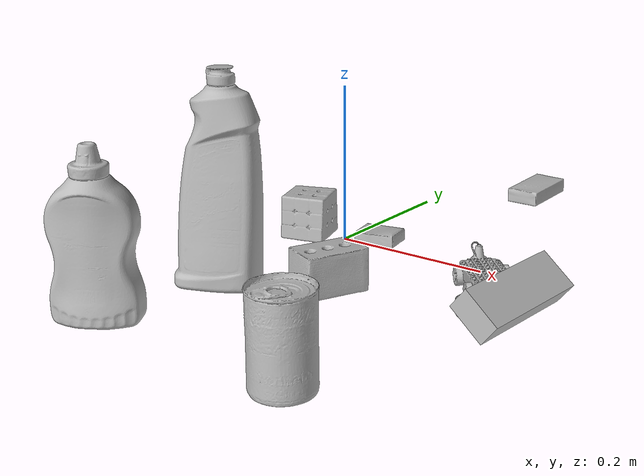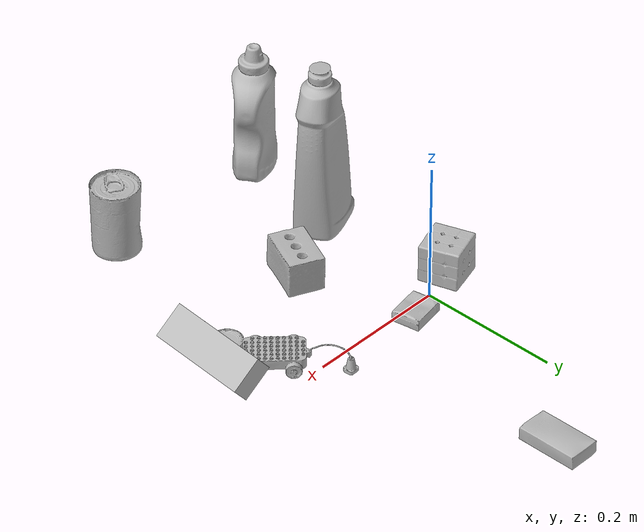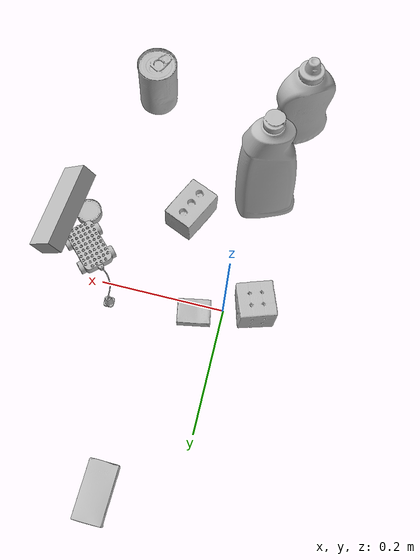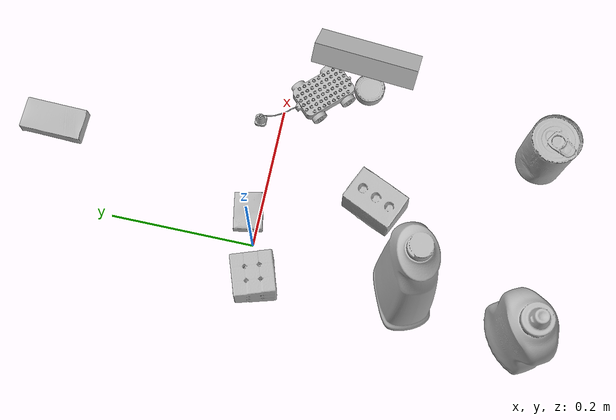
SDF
<sdf version="1.4">
  <world name="default">
    <light name="light1" type="point">
      <pose>0 0 1 0 0 0</pose>
      <diffuse>3 3 3 1</diffuse>
      <specular>3 3 3 1</specular>
    </light>
    <light name="light2" type="point">
      <pose>0 0.5 2 0 0 0</pose>
      <diffuse>1 1 1 1</diffuse>
      <specular>1 1 1 1</specular>
    </light>
    <light name="light3" type="point">
      <pose>0 0.5 2 0 0 0</pose>
      <diffuse>3 3 3 1</diffuse>
      <specular>3 3 3 1</specular>
    </light>
    <scene>
      <ambient>0.7 0.7 0.7</ambient>
    </scene>
    <model name="bottle1">
      <link name="link_bottle1">
        <collision name="default">
          <geometry>
            <mesh>
              <uri>model://bleach_cleanser/collision_meshes/collision.obj</uri>
              <scale>1.0 1.0 1.0</scale>
            </mesh>
          </geometry>
          <surface>
            <friction>
              <ode>
                <mu>0.5</mu>
                <mu2>0.5</mu2>
              </ode>
            </friction>
          <contact>
        <ode>
            <max_vel>0</max_vel>
            <min_depth>0.0001</min_depth>
            <kp>1e8</kp>
        </ode>
    </contact></surface>
        </collision>
        <visual name="default">
          <geometry>
            <mesh>
              <uri>model://bleach_cleanser/visual_meshes/visual.dae</uri>
              <scale>1.0 1.0 1.0</scale>
            </mesh>
          </geometry>
        </visual>
        <inertial>
          <mass>1.2697166204452515</mass>
          <pose>0.00012193183647468686 0.003783883061259985 -0.02442161738872528 -0.07381670616315505 0.00042011510954057825 -0.0068750724928957506</pose>
          <inertia>
            <ixx>0.0061798943</ixx>
            <iyy>0.0057587572</iyy>
            <izz>0.0010566014</izz>
            <ixy>0</ixy>
            <ixz>0</ixz>
            <iyz>0</iyz>
          </inertia>
        </inertial>
      </link>
      <pose>-0.021758221089839935 -0.20886395871639252 0.12578417360782623 -0.0001998373228805587 1.6689858779096777e-05 -1.147191868672074</pose>
    </model>
    <model name="bottle2">
      <link name="link_bottle2">
        <collision name="default">
          <geometry>
            <mesh>
              <uri>model://mustard_bottle/collision_meshes/collision.obj</uri>
              <scale>1.0 1.0 1.0</scale>
            </mesh>
          </geometry>
          <surface>
            <friction>
              <ode>
                <mu>0.5</mu>
                <mu2>0.5</mu2>
              </ode>
            </friction>
          <contact>
        <ode>
            <max_vel>0</max_vel>
            <min_depth>0.0001</min_depth>
            <kp>1e8</kp>
        </ode>
    </contact></surface>
        </collision>
        <visual name="default">
          <geometry>
            <mesh>
              <uri>model://mustard_bottle/visual_meshes/visual.dae</uri>
              <scale>1.0 1.0 1.0</scale>
            </mesh>
          </geometry>
        </visual>
        <inertial>
          <mass>0.7653017640113831</mass>
          <pose>0.000503245391882956 -0.00015647402324248105 -0.01747579500079155 0.0004182327658992807 0.0009465785893850277 0.024853714910462506</pose>
          <inertia>
            <ixx>0.0021251384</ixx>
            <iyy>0.0018646289</iyy>
            <izz>0.0005600813</izz>
            <ixy>0</ixy>
            <ixz>0</ixz>
            <iyz>0</iyz>
          </inertia>
        </inertial>
      </link>
      <pose>-0.0508953295648098 -0.3616427779197693 0.09615194797515869 1.4642937510767828e-05 1.626536608366706e-05 2.101381880647026</pose>
    </model>
    <model name="toy1">
      <link name="link_toy1">
        <collision name="default">
          <geometry>
            <mesh>
              <uri>model://g_lego_duplo/collision_meshes/collision.obj</uri>
              <scale>0.5 0.5 0.5</scale>
            </mesh>
          </geometry>
          <surface>
            <friction>
              <ode>
                <mu>0.5</mu>
                <mu2>0.5</mu2>
              </ode>
            </friction>
          <contact>
        <ode>
            <max_vel>0</max_vel>
            <min_depth>0.0001</min_depth>
            <kp>1e8</kp>
        </ode>
    </contact></surface>
        </collision>
        <visual name="default">
          <geometry>
            <mesh>
              <uri>model://g_lego_duplo/visual_meshes/visual.dae</uri>
              <scale>0.5 0.5 0.5</scale>
            </mesh>
          </geometry>
        </visual>
        <inertial>
          <mass>0.058442164212465286</mass>
          <pose>-0.025023842230439186 0.0008777315961197019 0.0019403378246352077 0.010962970283690966 0.0381082459421261 -0.09653034831594848</pose>
          <inertia>
            <ixx>2.1170836e-05</ixx>
            <iyy>6.4006235e-05</iyy>
            <izz>8.007422e-05</izz>
            <ixy>0</ixy>
            <ixz>0</ixz>
            <iyz>0</iyz>
          </inertia>
        </inertial>
      </link>
      <pose>0.21628087759017944 -0.026328107342123985 0.014934420585632324 0.0001919621486086355 -0.00270486522149983 2.3407572004037225</pose>
    </model>
    <model name="toy2">
      <link name="link_toy2">
        <collision name="default">
          <geometry>
            <mesh>
              <uri>model://foam_brick/collision_meshes/collision.obj</uri>
              <scale>1.0 1.0 1.0</scale>
            </mesh>
          </geometry>
          <surface>
            <friction>
              <ode>
                <mu>0.5</mu>
                <mu2>0.5</mu2>
              </ode>
            </friction>
          <contact>
        <ode>
            <max_vel>0</max_vel>
            <min_depth>0.0001</min_depth>
            <kp>1e8</kp>
        </ode>
    </contact></surface>
        </collision>
        <visual name="default">
          <geometry>
            <mesh>
              <uri>model://foam_brick/visual_meshes/visual.dae</uri>
              <scale>1.0 1.0 1.0</scale>
            </mesh>
          </geometry>
        </visual>
        <inertial>
          <mass>0.20487983524799347</mass>
          <pose>-0.0002522472059354186 0.0003458437859080732 -0.0002532101352699101 -0.2940200921298176 0.01727444945267686 -0.0007449878655710941</pose>
          <inertia>
            <ixx>8.9495355e-05</ixx>
            <iyy>0.0001428839</iyy>
            <izz>0.00014469978</izz>
            <ixy>0</ixy>
            <ixz>0</ixz>
            <iyz>0</iyz>
          </inertia>
        </inertial>
      </link>
      <pose>0.08936942368745804 -0.15100879967212677 0.025922801345586777 0.013417146281131257 0.004152453637674527 -1.9980029215195894</pose>
    </model>
    <model name="can1">
      <link name="link_can1">
        <collision name="default">
          <geometry>
            <mesh>
              <uri>model://tuna_fish_can/collision_meshes/collision.obj</uri>
              <scale>0.5 0.5 0.5</scale>
            </mesh>
          </geometry>
          <surface>
            <friction>
              <ode>
                <mu>0.5</mu>
                <mu2>0.5</mu2>
              </ode>
            </friction>
          <contact>
        <ode>
            <max_vel>0</max_vel>
            <min_depth>0.0001</min_depth>
            <kp>1e8</kp>
        </ode>
    </contact></surface>
        </collision>
        <visual name="default">
          <geometry>
            <mesh>
              <uri>model://tuna_fish_can/visual_meshes/visual.dae</uri>
              <scale>0.5 0.5 0.5</scale>
            </mesh>
          </geometry>
        </visual>
        <inertial>
          <mass>0.012491201050579548</mass>
          <pose>-2.036202567978762e-05 -7.256427124957554e-06 -0.0005269025568850338 -0.0017944782936896576 0.0001716245920406042 0.24054207470378652</pose>
          <inertia>
            <ixx>1.6888293e-06</ixx>
            <iyy>1.6817903e-06</iyy>
            <izz>2.889828e-06</izz>
            <ixy>0</ixy>
            <ixz>0</ixz>
            <iyz>0</iyz>
          </inertia>
        </inertial>
      </link>
      <pose>0.2566928565502167 -0.11234226077795029 0.00851999968290329 7.664713335170243e-09 -4.065891785765694e-09 -2.1099502994743373</pose>
    </model>
    <model name="can2">
      <link name="link_can2">
        <collision name="default">
          <geometry>
            <mesh>
              <uri>model://tomato_soup_can/collision_meshes/collision.obj</uri>
              <scale>1.0 1.0 1.0</scale>
            </mesh>
          </geometry>
          <surface>
            <friction>
              <ode>
                <mu>0.5</mu>
                <mu2>0.5</mu2>
              </ode>
            </friction>
          <contact>
        <ode>
            <max_vel>0</max_vel>
            <min_depth>0.0001</min_depth>
            <kp>1e8</kp>
        </ode>
    </contact></surface>
        </collision>
        <visual name="default">
          <geometry>
            <mesh>
              <uri>model://tomato_soup_can/visual_meshes/visual.dae</uri>
              <scale>1.0 1.0 1.0</scale>
            </mesh>
          </geometry>
        </visual>
        <inertial>
          <mass>0.1827235370874405</mass>
          <pose>0.00012652271834667772 0.00010805515921674669 -0.0017973986687138677 0.007020070640758328 0.00042299385100205743 -0.009903366123441316</pose>
          <inertia>
            <ixx>0.00020034082</ixx>
            <iyy>0.00019918295</iyy>
            <izz>0.00010383482</izz>
            <ixy>0</ixy>
            <ixz>0</ixz>
            <iyz>0</iyz>
          </inertia>
        </inertial>
      </link>
      <pose>0.202693372964859 -0.3655126094818115 0.05127401277422905 -5.081200049096726e-07 -8.983699899814044e-07 -0.8415050463365592</pose>
    </model>
    <model name="box1">
      <link name="link_box1">
        <collision name="default">
          <geometry>
            <mesh>
              <uri>model://jenga/collision_meshes/collision.obj</uri>
              <scale>1.0 1.0 1.0</scale>
            </mesh>
          </geometry>
          <surface>
            <friction>
              <ode>
                <mu>0.5</mu>
                <mu2>0.5</mu2>
              </ode>
            </friction>
          <contact>
        <ode>
            <max_vel>0</max_vel>
            <min_depth>0.0001</min_depth>
            <kp>1e8</kp>
        </ode>
    </contact></surface>
        </collision>
        <visual name="default">
          <geometry>
            <mesh>
              <uri>model://jenga/visual_meshes/visual.dae</uri>
              <scale>1.0 1.0 1.0</scale>
            </mesh>
          </geometry>
        </visual>
        <inertial>
          <mass>0.23032541573047638</mass>
          <pose>-2.502855807051674e-07 -0.00010250010382151231 -4.0923401684267446e-05 0.0 -7.342154049184251e-07 0.0</pose>
          <inertia>
            <ixx>6.3736625e-05</ixx>
            <iyy>0.00043187768</iyy>
            <izz>0.00046106614</izz>
            <ixy>0</ixy>
            <ixz>0</ixz>
            <iyz>0</iyz>
          </inertia>
        </inertial>
      </link>
      <pose>0.2951994240283966 -0.0995662584900856 0.027059895917773247 -0.6727160248564789 -3.296290334300044e-06 -1.652593609085041</pose>
    </model>
    <model name="box2">
      <link name="link_box2">
        <collision name="default">
          <geometry>
            <mesh>
              <uri>model://cracker_box/collision_meshes/collision.obj</uri>
              <scale>0.25 0.25 0.25</scale>
            </mesh>
          </geometry>
          <surface>
            <friction>
              <ode>
                <mu>0.5</mu>
                <mu2>0.5</mu2>
              </ode>
            </friction>
          <contact>
        <ode>
            <max_vel>0</max_vel>
            <min_depth>0.0001</min_depth>
            <kp>1e8</kp>
        </ode>
    </contact></surface>
        </collision>
        <visual name="default">
          <geometry>
            <mesh>
              <uri>model://cracker_box/visual_meshes/visual.dae</uri>
              <scale>0.25 0.25 0.25</scale>
            </mesh>
          </geometry>
        </visual>
        <inertial>
          <mass>0.037928901612758636</mass>
          <pose>0.0002366034168517217 6.358561222441494e-05 -0.000425738311605528 -0.00031620771242973385 -0.011106489600347247 0.002546794536796529</pose>
          <inertia>
            <ixx>6.029637e-06</ixx>
            <iyy>9.956116e-06</iyy>
            <izz>1.420829e-05</izz>
            <ixy>0</ixy>
            <ixz>0</ixz>
            <iyz>0</iyz>
          </inertia>
        </inertial>
      </link>
      <pose>0.04381631314754486 0.016057085245847702 0.009096027351915836 -0.01405058351866709 -0.005016560697771084 0.18596292517795102</pose>
    </model>
    <model name="box3">
      <link name="link_box3">
        <collision name="default">
          <geometry>
            <mesh>
              <uri>model://sugar_box/collision_meshes/collision.obj</uri>
              <scale>0.5 0.5 0.5</scale>
            </mesh>
          </geometry>
          <surface>
            <friction>
              <ode>
                <mu>0.5</mu>
                <mu2>0.5</mu2>
              </ode>
            </friction>
          <contact>
        <ode>
            <max_vel>0</max_vel>
            <min_depth>0.0001</min_depth>
            <kp>1e8</kp>
        </ode>
    </contact></surface>
        </collision>
        <visual name="default">
          <geometry>
            <mesh>
              <uri>model://sugar_box/visual_meshes/visual.dae</uri>
              <scale>0.5 0.5 0.5</scale>
            </mesh>
          </geometry>
        </visual>
        <inertial>
          <mass>0.11577744781970978</mass>
          <pose>0.0005171863595023751 1.9245549992774613e-05 -0.00018182402709499002 -0.0004046260967602003 0.0010506636382171825 0.002615378323343388</pose>
          <inertia>
            <ixx>2.4116362e-05</ixx>
            <iyy>7.7949044e-05</iyy>
            <izz>9.3314295e-05</izz>
            <ixy>0</ixy>
            <ixz>0</ixz>
            <iyz>0</iyz>
          </inertia>
        </inertial>
      </link>
      <pose>0.11483775079250336 0.31371819972991943 0.011399304494261742 0.0007751713809337254 -0.023432462158646368 1.548614759476172</pose>
    </model>
    <model name="box4">
      <link name="link_box4">
        <collision name="default">
          <geometry>
            <mesh>
              <uri>model://rubiks_cube/collision_meshes/collision.obj</uri>
              <scale>1.0 1.0 1.0</scale>
            </mesh>
          </geometry>
          <surface>
            <friction>
              <ode>
                <mu>0.5</mu>
                <mu2>0.5</mu2>
              </ode>
            </friction>
          <contact>
        <ode>
            <max_vel>0</max_vel>
            <min_depth>0.0001</min_depth>
            <kp>1e8</kp>
        </ode>
    </contact></surface>
        </collision>
        <visual name="default">
          <geometry>
            <mesh>
              <uri>model://rubiks_cube/visual_meshes/visual.dae</uri>
              <scale>1.0 1.0 1.0</scale>
            </mesh>
          </geometry>
        </visual>
        <inertial>
          <mass>0.277982622385025</mass>
          <pose>2.6721041649580002e-05 5.2569666877388954e-05 -7.264316082000732e-06 -0.05467259342135701 -0.09814005995908277 -0.03445491653702878</pose>
          <inertia>
            <ixx>0.00015360407</ixx>
            <iyy>0.00015288773</iyy>
            <izz>0.00015487692</izz>
            <ixy>0</ixy>
            <ixz>0</ixz>
            <iyz>0</iyz>
          </inertia>
        </inertial>
      </link>
      <pose>-0.04733121022582054 -0.013035979121923447 0.02867899090051651 -2.0058524824425556e-06 -1.6512731827854886e-07 1.8963198695372439</pose>
    </model>
  <physics type="ode">
      <max_contacts>50</max_contacts>
      <ode>
        <solver>
          <type>quick</type>
          <iters>75</iters>
        </solver>
        <constraints>
          <contact_max_correcting_vel>0</contact_max_correcting_vel>
          <contact_surface_layer>0</contact_surface_layer>
        </constraints>
      </ode>
    </physics></world>
</sdf>
